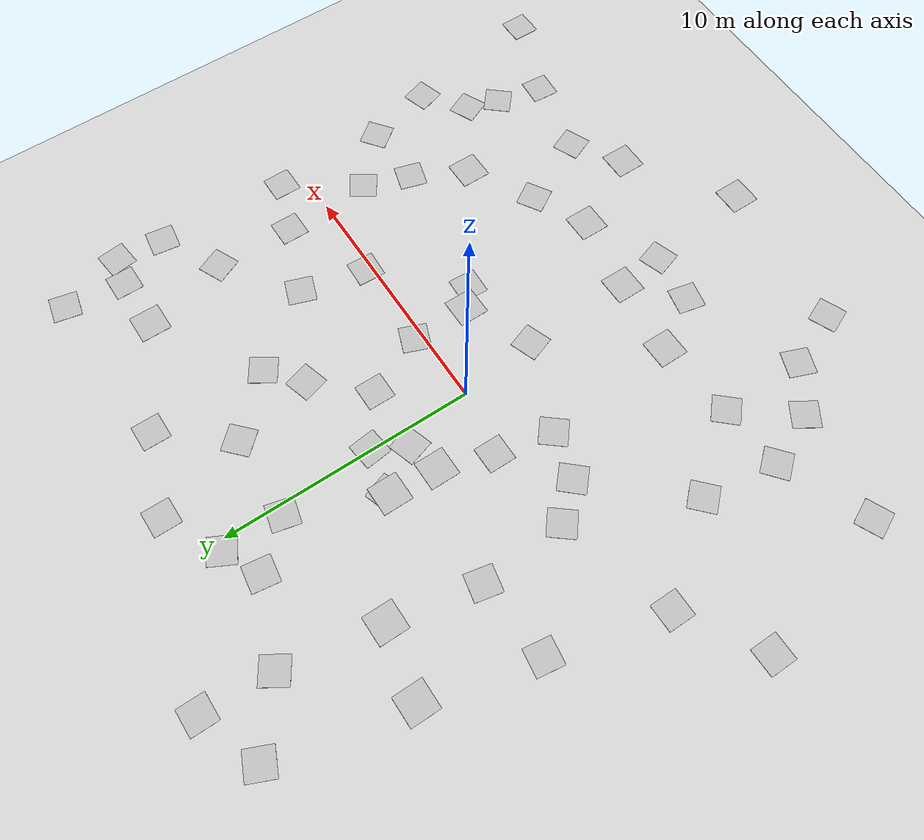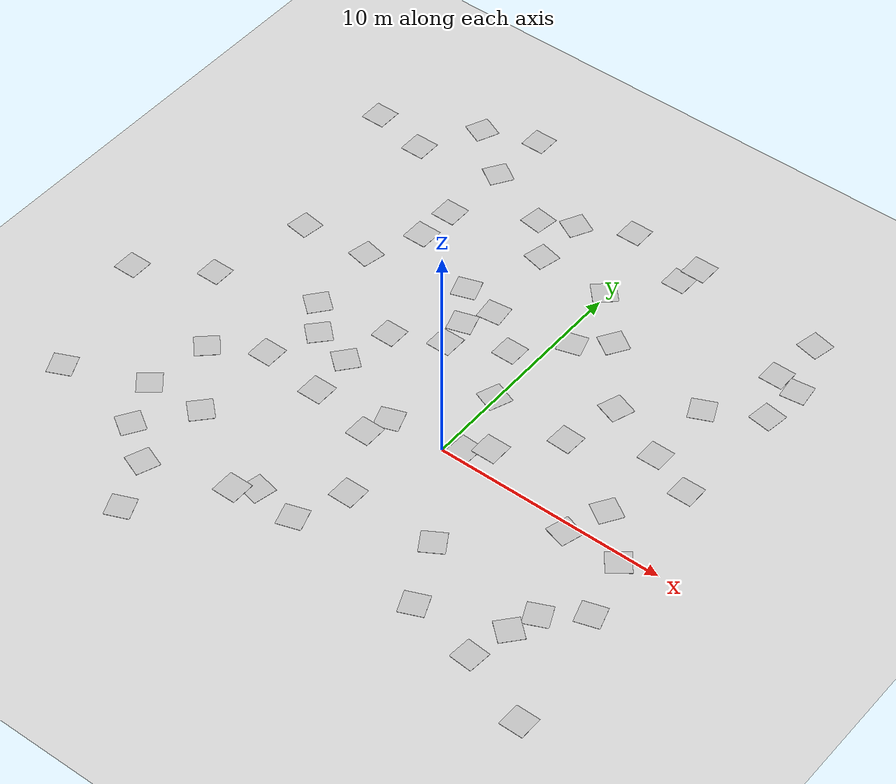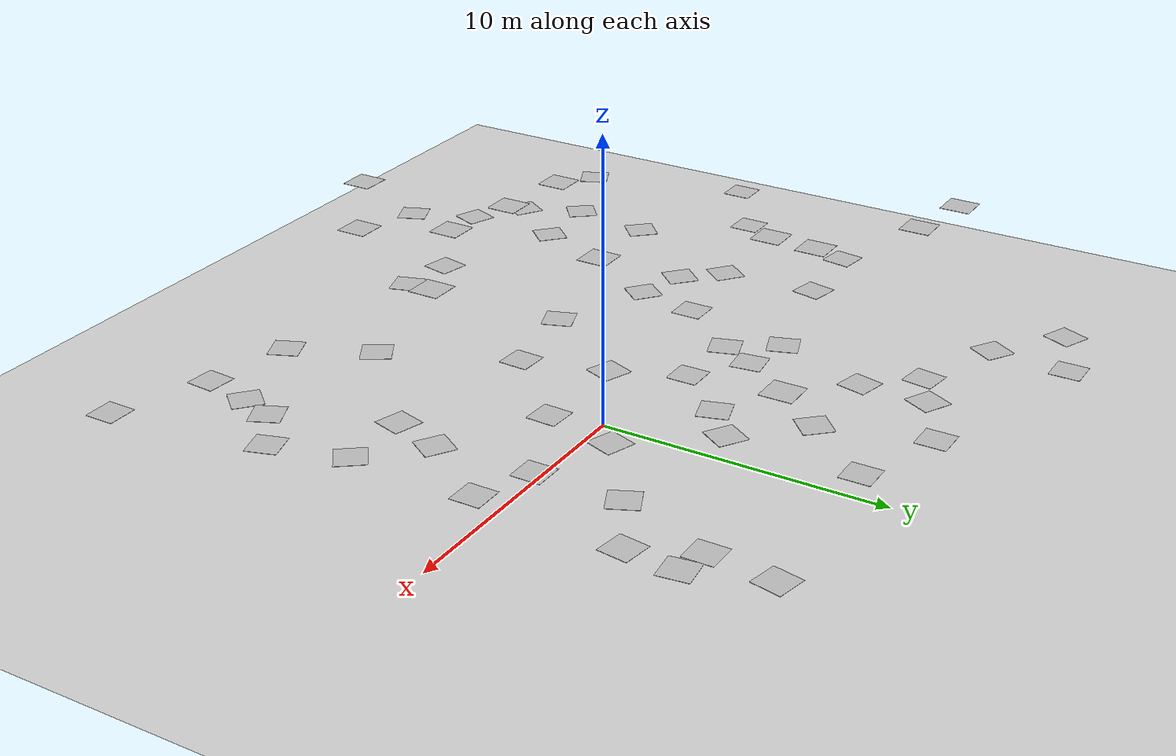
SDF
<sdf version="1.6">
 <world name="default">
  <light name="sun" type="directional">
   <pose>0 0 10 0 -0 0</pose>
   <diffuse>0.8 0.8 0.8 1</diffuse>
   <specular>0.2 0.2 0.2 1</specular>
   <attenuation>
    <range>1000</range>
    <constant>0.9</constant>
    <linear>0.01</linear>
    <quadratic>0.001</quadratic>
   </attenuation>
   <direction>-0.5 0.1 -0.9</direction>
  </light>
  <model name="ground_plane">
   <static>1</static>
   <link name="link">
    <collision name="collision">
     <geometry><plane><normal>0 0 1</normal><size>100 100</size></plane></geometry>
     <surface><friction><ode><mu>100</mu><mu2>50</mu2></ode></friction></surface>
    </collision>
    <visual name="visual">
     <cast_shadows>0</cast_shadows>
     <geometry><plane><normal>0 0 1</normal><size>100 100</size></plane></geometry>
     <material>
      <script><uri>file://media/materials/scripts/gazebo.material</uri><name>Gazebo/Grey</name></script>
     </material>
    </visual>
    <velocity_decay><linear>0</linear><angular>0</angular></velocity_decay>
   </link>
  </model>
  <physics name="default_physics" default="0" type="ode">
   <max_step_size>0.001</max_step_size>
   <real_time_factor>1</real_time_factor>
   <real_time_update_rate>1000</real_time_update_rate>
  </physics>
  <scene><ambient>0.4 0.4 0.4 1</ambient><background>0.7 0.7 0.7 1</background><shadows>1</shadows></scene>
  <spherical_coordinates>
   <surface_model>EARTH_WGS84</surface_model>
   <latitude_deg>0</latitude_deg>
   <longitude_deg>0</longitude_deg>
   <elevation>0</elevation>
   <heading_deg>0</heading_deg>
  </spherical_coordinates>
  <gravity>0 0 -9.8</gravity>
  <magnetic_field>6e-06 2.3e-05 -4.2e-05</magnetic_field>
  <atmosphere type="adiabatic"/>
  <audio><device>default</device></audio>
  <model name="Apriltag36_11_00000">
   <link name="main">
    <pose>0 0 3 0 -0 0</pose>
    <visual name="main_Visual">
     <geometry><box><size>1 1 0.01</size></box></geometry>
     <material>
      <script>
       <uri>model://Apriltag36_11_00000/materials/scripts</uri>
       <uri>model://Apriltag36_11_00000/materials/textures</uri>
       <name>Apriltag36_11_00000</name>
      </script>
     </material>
    </visual>
   </link>
   <static>1</static>
   <pose>0.180831 -0.047998 3 0 -0 0</pose>
  </model>
  <model name="Apriltag36_11_00000_0">
   <link name="main">
    <pose>0 0 3 0 -0 0</pose>
    <visual name="main_Visual">
     <geometry><box><size>1 1 0.01</size></box></geometry>
     <material>
      <script>
       <uri>model://Apriltag36_11_00000/materials/scripts</uri>
       <uri>model://Apriltag36_11_00000/materials/textures</uri>
       <name>Apriltag36_11_00000</name>
      </script>
     </material>
    </visual>
   </link>
   <static>1</static>
   <pose>-8.09842 -8.19597 -0 0 -0 1</pose>
  </model>
  <model name="Apriltag36_11_00000_1">
   <link name="main">
    <pose>0 0 3 0 -0 0</pose>
    <visual name="main_Visual">
     <geometry><box><size>1 1 0.01</size></box></geometry>
     <material>
      <script>
       <uri>model://Apriltag36_11_00000/materials/scripts</uri>
       <uri>model://Apriltag36_11_00000/materials/textures</uri>
       <name>Apriltag36_11_00000</name>
      </script>
     </material>
    </visual>
   </link>
   <static>1</static>
   <pose>9.06764 -6.12043 0 0 -0 2</pose>
  </model>
  <model name="Apriltag36_11_00000_2">
   <link name="main">
    <pose>0 0 3 0 -0 0</pose>
    <visual name="main_Visual">
     <geometry><box><size>1 1 0.01</size></box></geometry>
     <material>
      <script>
       <uri>model://Apriltag36_11_00000/materials/scripts</uri>
       <uri>model://Apriltag36_11_00000/materials/textures</uri>
       <name>Apriltag36_11_00000</name>
      </script>
     </material>
    </visual>
   </link>
   <static>1</static>
   <pose>-2.86208 9.67313 0 0 -0 3</pose>
  </model>
  <model name="Apriltag36_11_00001">
   <link name="main">
    <pose>0 0 3 0 -0 0</pose>
    <visual name="main_Visual">
     <geometry><box><size>1 1 0.01</size></box></geometry>
     <material>
      <script>
       <uri>model://Apriltag36_11_00001/materials/scripts</uri>
       <uri>model://Apriltag36_11_00001/materials/textures</uri>
       <name>Apriltag36_11_00001</name>
      </script>
     </material>
    </visual>
   </link>
   <static>1</static>
   <pose>1.57263 1.12402 -0 0 -0 1.2</pose>
  </model>
  <model name="Apriltag36_11_00001_0">
   <link name="main">
    <pose>0 0 3 0 -0 0</pose>
    <visual name="main_Visual">
     <geometry><box><size>1 1 0.01</size></box></geometry>
     <material>
      <script>
       <uri>model://Apriltag36_11_00001/materials/scripts</uri>
       <uri>model://Apriltag36_11_00001/materials/textures</uri>
       <name>Apriltag36_11_00001</name>
      </script>
     </material>
    </visual>
   </link>
   <static>1</static>
   <pose>-6.49386 -9.31739 -0 0 -0 1.2</pose>
  </model>
  <model name="Apriltag36_11_00001_1">
   <link name="main">
    <pose>0 0 3 0 -0 0</pose>
    <visual name="main_Visual">
     <geometry><box><size>1 1 0.01</size></box></geometry>
     <material>
      <script>
       <uri>model://Apriltag36_11_00001/materials/scripts</uri>
       <uri>model://Apriltag36_11_00001/materials/textures</uri>
       <name>Apriltag36_11_00001</name>
      </script>
     </material>
    </visual>
   </link>
   <static>1</static>
   <pose>10.5059 -4.97033 -0 0 -0 0.3</pose>
  </model>
  <model name="Apriltag36_11_00002">
   <link name="main">
    <pose>0 0 3 0 -0 0</pose>
    <visual name="main_Visual">
     <geometry><box><size>1 1 0.01</size></box></geometry>
     <material>
      <script>
       <uri>model://Apriltag36_11_00002/materials/scripts</uri>
       <uri>model://Apriltag36_11_00002/materials/textures</uri>
       <name>Apriltag36_11_00002</name>
      </script>
     </material>
    </visual>
   </link>
   <static>1</static>
   <pose>2.3097 -1.5964 -0 0 -0 3.1</pose>
  </model>
  <model name="Apriltag36_11_00002_0">
   <link name="main">
    <pose>0 0 3 0 -0 0</pose>
    <visual name="main_Visual">
     <geometry><box><size>1 1 0.01</size></box></geometry>
     <material>
      <script>
       <uri>model://Apriltag36_11_00002/materials/scripts</uri>
       <uri>model://Apriltag36_11_00002/materials/textures</uri>
       <name>Apriltag36_11_00002</name>
      </script>
     </material>
    </visual>
   </link>
   <static>1</static>
   <pose>-8.9276 -6.2431 0 0 -0 -0.883185</pose>
  </model>
  <model name="Apriltag36_11_00002_1">
   <link name="main">
    <pose>0 0 3 0 -0 0</pose>
    <visual name="main_Visual">
     <geometry><box><size>1 1 0.01</size></box></geometry>
     <material>
      <script>
       <uri>model://Apriltag36_11_00002/materials/scripts</uri>
       <uri>model://Apriltag36_11_00002/materials/textures</uri>
       <name>Apriltag36_11_00002</name>
      </script>
     </material>
    </visual>
   </link>
   <static>1</static>
   <pose>7.51542 -2.48902 0 0 -0 -0.283185</pose>
  </model>
  <model name="Apriltag36_11_00002_2">
   <link name="main">
    <pose>0 0 3 0 -0 0</pose>
    <visual name="main_Visual">
     <geometry><box><size>1 1 0.01</size></box></geometry>
     <material>
      <script>
       <uri>model://Apriltag36_11_00002/materials/scripts</uri>
       <uri>model://Apriltag36_11_00002/materials/textures</uri>
       <name>Apriltag36_11_00002</name>
      </script>
     </material>
    </visual>
   </link>
   <static>1</static>
   <pose>8.6906 -7.27277 0 0 -0 -2.28319</pose>
  </model>
  <model name="Apriltag36_11_00002_3">
   <link name="main">
    <pose>0 0 3 0 -0 0</pose>
    <visual name="main_Visual">
     <geometry><box><size>1 1 0.01</size></box></geometry>
     <material>
      <script>
       <uri>model://Apriltag36_11_00002/materials/scripts</uri>
       <uri>model://Apriltag36_11_00002/materials/textures</uri>
       <name>Apriltag36_11_00002</name>
      </script>
     </material>
    </visual>
   </link>
   <static>1</static>
   <pose>-1.51982 10.3352 0 0 -0 -2.05319</pose>
  </model>
  <model name="Apriltag36_11_00002_4">
   <link name="main">
    <pose>0 0 3 0 -0 0</pose>
    <visual name="main_Visual">
     <geometry><box><size>1 1 0.01</size></box></geometry>
     <material>
      <script>
       <uri>model://Apriltag36_11_00002/materials/scripts</uri>
       <uri>model://Apriltag36_11_00002/materials/textures</uri>
       <name>Apriltag36_11_00002</name>
      </script>
     </material>
    </visual>
   </link>
   <static>1</static>
   <pose>-1.53131 8.13085 0 0 -0 1.34</pose>
  </model>
  <model name="Apriltag36_11_00003_0">
   <link name="main">
    <pose>0 0 3 0 -0 0</pose>
    <visual name="main_Visual">
     <geometry><box><size>1 1 0.01</size></box></geometry>
     <material>
      <script>
       <uri>model://Apriltag36_11_00003/materials/scripts</uri>
       <uri>model://Apriltag36_11_00003/materials/textures</uri>
       <name>Apriltag36_11_00003</name>
      </script>
     </material>
    </visual>
   </link>
   <static>1</static>
   <pose>5.4295 3.4548 0 0 -0 1.23</pose>
  </model>
  <model name="Apriltag36_11_00003">
   <link name="main">
    <pose>0 0 3 0 -0 0</pose>
    <visual name="main_Visual">
     <geometry><box><size>1 1 0.01</size></box></geometry>
     <material>
      <script>
       <uri>model://Apriltag36_11_00003/materials/scripts</uri>
       <uri>model://Apriltag36_11_00003/materials/textures</uri>
       <name>Apriltag36_11_00003</name>
      </script>
     </material>
    </visual>
   </link>
   <static>1</static>
   <pose>-0.483767 -7.96809 0 0 -0 -2.82668</pose>
  </model>
  <model name="Apriltag36_11_00009">
   <link name="main">
    <pose>0 0 3 0 -0 0</pose>
    <visual name="main_Visual">
     <geometry><box><size>1 1 0.01</size></box></geometry>
     <material>
      <script>
       <uri>model://Apriltag36_11_00009/materials/scripts</uri>
       <uri>model://Apriltag36_11_00009/materials/textures</uri>
       <name>Apriltag36_11_00009</name>
      </script>
     </material>
    </visual>
   </link>
   <static>1</static>
   <pose>-2.35818 -7.74476 0 0 -0 -1.78319</pose>
  </model>
  <model name="Apriltag36_11_00010">
   <link name="main">
    <pose>0 0 3 0 -0 0</pose>
    <visual name="main_Visual">
     <geometry><box><size>1 1 0.01</size></box></geometry>
     <material>
      <script>
       <uri>model://Apriltag36_11_00010/materials/scripts</uri>
       <uri>model://Apriltag36_11_00010/materials/textures</uri>
       <name>Apriltag36_11_00010</name>
      </script>
     </material>
    </visual>
   </link>
   <static>1</static>
   <pose>2.05754 -7.84201 3 0 -0 0</pose>
  </model>
  <model name="Apriltag36_11_00013">
   <link name="main">
    <pose>0 0 3 0 -0 0</pose>
    <visual name="main_Visual">
     <geometry><box><size>1 1 0.01</size></box></geometry>
     <material>
      <script>
       <uri>model://Apriltag36_11_00013/materials/scripts</uri>
       <uri>model://Apriltag36_11_00013/materials/textures</uri>
       <name>Apriltag36_11_00013</name>
      </script>
     </material>
    </visual>
   </link>
   <static>1</static>
   <pose>0.675308 -5.24726 3 0 -0 0</pose>
  </model>
  <model name="Apriltag36_11_00008">
   <link name="main">
    <pose>0 0 3 0 -0 0</pose>
    <visual name="main_Visual">
     <geometry><box><size>1 1 0.01</size></box></geometry>
     <material>
      <script>
       <uri>model://Apriltag36_11_00008/materials/scripts</uri>
       <uri>model://Apriltag36_11_00008/materials/textures</uri>
       <name>Apriltag36_11_00008</name>
      </script>
     </material>
    </visual>
   </link>
   <static>1</static>
   <pose>-4.54053 -4.45472 3 0 -0 0</pose>
  </model>
  <model name="Apriltag36_11_00008_0">
   <link name="main">
    <pose>0 0 3 0 -0 0</pose>
    <visual name="main_Visual">
     <geometry><box><size>1 1 0.01</size></box></geometry>
     <material>
      <script>
       <uri>model://Apriltag36_11_00008/materials/scripts</uri>
       <uri>model://Apriltag36_11_00008/materials/textures</uri>
       <name>Apriltag36_11_00008</name>
      </script>
     </material>
    </visual>
   </link>
   <static>1</static>
   <pose>-1.9322 -4.76803 3 0 -0 0</pose>
  </model>
  <model name="Apriltag36_11_00008_1">
   <link name="main">
    <pose>0 0 3 0 -0 0</pose>
    <visual name="main_Visual">
     <geometry><box><size>1 1 0.01</size></box></geometry>
     <material>
      <script>
       <uri>model://Apriltag36_11_00008/materials/scripts</uri>
       <uri>model://Apriltag36_11_00008/materials/textures</uri>
       <name>Apriltag36_11_00008</name>
      </script>
     </material>
    </visual>
   </link>
   <static>1</static>
   <pose>-3.89876 5.40482 3 0 -0 0</pose>
  </model>
  <model name="Apriltag36_11_00008_2">
   <link name="main">
    <pose>0 0 3 0 -0 0</pose>
    <visual name="main_Visual">
     <geometry><box><size>1 1 0.01</size></box></geometry>
     <material>
      <script>
       <uri>model://Apriltag36_11_00008/materials/scripts</uri>
       <uri>model://Apriltag36_11_00008/materials/textures</uri>
       <name>Apriltag36_11_00008</name>
      </script>
     </material>
    </visual>
   </link>
   <static>1</static>
   <pose>4.16599 -5.79359 0 0 -0 2.12</pose>
  </model>
  <model name="Apriltag36_11_00008_3">
   <link name="main">
    <pose>0 0 3 0 -0 0</pose>
    <visual name="main_Visual">
     <geometry><box><size>1 1 0.01</size></box></geometry>
     <material>
      <script>
       <uri>model://Apriltag36_11_00008/materials/scripts</uri>
       <uri>model://Apriltag36_11_00008/materials/textures</uri>
       <name>Apriltag36_11_00008</name>
      </script>
     </material>
    </visual>
   </link>
   <static>1</static>
   <pose>10.1982 8.2991 0 0 -0 0.123123</pose>
  </model>
  <model name="Apriltag36_11_00010_0">
   <link name="main">
    <pose>0 0 3 0 -0 0</pose>
    <visual name="main_Visual">
     <geometry><box><size>1 1 0.01</size></box></geometry>
     <material>
      <script>
       <uri>model://Apriltag36_11_00010/materials/scripts</uri>
       <uri>model://Apriltag36_11_00010/materials/textures</uri>
       <name>Apriltag36_11_00010</name>
      </script>
     </material>
    </visual>
   </link>
   <static>1</static>
   <pose>9.15633 8.52005 0 0 -0 3.1414</pose>
  </model>
  <model name="Apriltag36_11_00011">
   <link name="main">
    <pose>0 0 3 0 -0 0</pose>
    <visual name="main_Visual">
     <geometry><box><size>1 1 0.01</size></box></geometry>
     <material>
      <script>
       <uri>model://Apriltag36_11_00011/materials/scripts</uri>
       <uri>model://Apriltag36_11_00011/materials/textures</uri>
       <name>Apriltag36_11_00011</name>
      </script>
     </material>
    </visual>
   </link>
   <static>1</static>
   <pose>-3.99369 3.80435 3 0 -0 0</pose>
  </model>
  <model name="Apriltag36_11_00010_1">
   <link name="main">
    <pose>0 0 3 0 -0 0</pose>
    <visual name="main_Visual">
     <geometry><box><size>1 1 0.01</size></box></geometry>
     <material>
      <script>
       <uri>model://Apriltag36_11_00010/materials/scripts</uri>
       <uri>model://Apriltag36_11_00010/materials/textures</uri>
       <name>Apriltag36_11_00010</name>
      </script>
     </material>
    </visual>
   </link>
   <static>1</static>
   <pose>-2.74596 4.97416 0 0 -0 0.334</pose>
  </model>
  <model name="Apriltag36_11_00012">
   <link name="main">
    <pose>0 0 3 0 -0 0</pose>
    <visual name="main_Visual">
     <geometry><box><size>1 1 0.01</size></box></geometry>
     <material>
      <script>
       <uri>model://Apriltag36_11_00012/materials/scripts</uri>
       <uri>model://Apriltag36_11_00012/materials/textures</uri>
       <name>Apriltag36_11_00012</name>
      </script>
     </material>
    </visual>
   </link>
   <static>1</static>
   <pose>-7.10763 7.55783 3 0 -0 0</pose>
  </model>
  <model name="Apriltag36_11_00007">
   <link name="main">
    <pose>0 0 3 0 -0 0</pose>
    <visual name="main_Visual">
     <geometry><box><size>1 1 0.01</size></box></geometry>
     <material>
      <script>
       <uri>model://Apriltag36_11_00007/materials/scripts</uri>
       <uri>model://Apriltag36_11_00007/materials/textures</uri>
       <name>Apriltag36_11_00007</name>
      </script>
     </material>
    </visual>
   </link>
   <static>1</static>
   <pose>9.40469 10.6878 0 0 -0 -1.78319</pose>
  </model>
  <model name="Apriltag36_11_00009_0">
   <link name="main">
    <pose>0 0 3 0 -0 0</pose>
    <visual name="main_Visual">
     <geometry><box><size>1 1 0.01</size></box></geometry>
     <material>
      <script>
       <uri>model://Apriltag36_11_00009/materials/scripts</uri>
       <uri>model://Apriltag36_11_00009/materials/textures</uri>
       <name>Apriltag36_11_00009</name>
      </script>
     </material>
    </visual>
   </link>
   <static>1</static>
   <pose>4.91356 1.06503 -0 0 -0 3.1</pose>
  </model>
  <model name="Apriltag36_11_00009_1">
   <link name="main">
    <pose>0 0 3 0 -0 0</pose>
    <visual name="main_Visual">
     <geometry><box><size>1 1 0.01</size></box></geometry>
     <material>
      <script>
       <uri>model://Apriltag36_11_00009/materials/scripts</uri>
       <uri>model://Apriltag36_11_00009/materials/textures</uri>
       <name>Apriltag36_11_00009</name>
      </script>
     </material>
    </visual>
   </link>
   <static>1</static>
   <pose>7.93627 2.46693 0 0 -0 3.1414</pose>
  </model>
  <model name="Apriltag36_11_00006">
   <link name="main">
    <pose>0 0 3 0 -0 0</pose>
    <visual name="main_Visual">
     <geometry><box><size>1 1 0.01</size></box></geometry>
     <material>
      <script>
       <uri>model://Apriltag36_11_00006/materials/scripts</uri>
       <uri>model://Apriltag36_11_00006/materials/textures</uri>
       <name>Apriltag36_11_00006</name>
      </script>
     </material>
    </visual>
   </link>
   <static>1</static>
   <pose>2.17535 5.11716 0 0 -0 -1.28319</pose>
  </model>
  <model name="Apriltag36_11_00003_1">
   <link name="main">
    <pose>0 0 3 0 -0 0</pose>
    <visual name="main_Visual">
     <geometry><box><size>1 1 0.01</size></box></geometry>
     <material>
      <script>
       <uri>model://Apriltag36_11_00003/materials/scripts</uri>
       <uri>model://Apriltag36_11_00003/materials/textures</uri>
       <name>Apriltag36_11_00003</name>
      </script>
     </material>
    </visual>
   </link>
   <static>1</static>
   <pose>-3.96538 -0.809464 0 0 -0 2.45</pose>
  </model>
  <model name="Apriltag36_11_00005">
   <link name="main">
    <pose>0 0 3 0 -0 0</pose>
    <visual name="main_Visual">
     <geometry><box><size>1 1 0.01</size></box></geometry>
     <material>
      <script>
       <uri>model://Apriltag36_11_00005/materials/scripts</uri>
       <uri>model://Apriltag36_11_00005/materials/textures</uri>
       <name>Apriltag36_11_00005</name>
      </script>
     </material>
    </visual>
   </link>
   <static>1</static>
   <pose>-6.71494 0.848978 -0 0 -0 -0.683185</pose>
  </model>
  <model name="Apriltag36_11_00004">
   <link name="main">
    <pose>0 0 3 0 -0 0</pose>
    <visual name="main_Visual">
     <geometry><box><size>1 1 0.01</size></box></geometry>
     <material>
      <script>
       <uri>model://Apriltag36_11_00004/materials/scripts</uri>
       <uri>model://Apriltag36_11_00004/materials/textures</uri>
       <name>Apriltag36_11_00004</name>
      </script>
     </material>
    </visual>
   </link>
   <static>1</static>
   <pose>-1.73816 3.42876 0 0 -0 -2.83318</pose>
  </model>
  <model name="Apriltag36_11_00002_5">
   <link name="main">
    <pose>0 0 3 0 -0 0</pose>
    <visual name="main_Visual">
     <geometry><box><size>1 1 0.01</size></box></geometry>
     <material>
      <script>
       <uri>model://Apriltag36_11_00002/materials/scripts</uri>
       <uri>model://Apriltag36_11_00002/materials/textures</uri>
       <name>Apriltag36_11_00002</name>
      </script>
     </material>
    </visual>
   </link>
   <static>1</static>
   <pose>-5.6684 -0.345135 0 0 -0 2.4</pose>
  </model>
  <model name="Apriltag36_11_00008_4">
   <link name="main">
    <pose>0 0 3 0 -0 0</pose>
    <visual name="main_Visual">
     <geometry><box><size>1 1 0.01</size></box></geometry>
     <material>
      <script>
       <uri>model://Apriltag36_11_00008/materials/scripts</uri>
       <uri>model://Apriltag36_11_00008/materials/textures</uri>
       <name>Apriltag36_11_00008</name>
      </script>
     </material>
    </visual>
   </link>
   <static>1</static>
   <pose>5.3929 -8.39874 0 0 -0 0.4</pose>
  </model>
  <model name="Apriltag36_11_00014">
   <link name="main">
    <pose>0 0 3 0 -0 0</pose>
    <visual name="main_Visual">
     <geometry><box><size>1 1 0.01</size></box></geometry>
     <material>
      <script>
       <uri>model://Apriltag36_11_00014/materials/scripts</uri>
       <uri>model://Apriltag36_11_00014/materials/textures</uri>
       <name>Apriltag36_11_00014</name>
      </script>
     </material>
    </visual>
   </link>
   <static>1</static>
   <pose>8.29346 -8.98144 0 0 -0 -1.64918</pose>
  </model>
  <model name="Apriltag36_11_00015">
   <link name="main">
    <pose>0 0 3 0 -0 0</pose>
    <visual name="main_Visual">
     <geometry><box><size>1 1 0.01</size></box></geometry>
     <material>
      <script>
       <uri>model://Apriltag36_11_00015/materials/scripts</uri>
       <uri>model://Apriltag36_11_00015/materials/textures</uri>
       <name>Apriltag36_11_00015</name>
      </script>
     </material>
    </visual>
   </link>
   <static>1</static>
   <pose>5.26753 8.71176 3 0 -0 0</pose>
  </model>
  <model name="Apriltag36_11_00013_0">
   <link name="main">
    <pose>0 0 3 0 -0 0</pose>
    <visual name="main_Visual">
     <geometry><box><size>1 1 0.01</size></box></geometry>
     <material>
      <script>
       <uri>model://Apriltag36_11_00013/materials/scripts</uri>
       <uri>model://Apriltag36_11_00013/materials/textures</uri>
       <name>Apriltag36_11_00013</name>
      </script>
     </material>
    </visual>
   </link>
   <static>1</static>
   <pose>-6.94484 4.05002 0 0 -0 2.93902</pose>
  </model>
  <model name="Apriltag36_11_00007_0">
   <link name="main">
    <pose>0 0 3 0 -0 0</pose>
    <visual name="main_Visual">
     <geometry><box><size>1 1 0.01</size></box></geometry>
     <material>
      <script>
       <uri>model://Apriltag36_11_00007/materials/scripts</uri>
       <uri>model://Apriltag36_11_00007/materials/textures</uri>
       <name>Apriltag36_11_00007</name>
      </script>
     </material>
    </visual>
   </link>
   <static>1</static>
   <pose>-8.51346 -3.49131 0 0 -0 -2.39318</pose>
  </model>
  <model name="Apriltag36_11_00006_0">
   <link name="main">
    <pose>0 0 3 0 -0 0</pose>
    <visual name="main_Visual">
     <geometry><box><size>1 1 0.01</size></box></geometry>
     <material>
      <script>
       <uri>model://Apriltag36_11_00006/materials/scripts</uri>
       <uri>model://Apriltag36_11_00006/materials/textures</uri>
       <name>Apriltag36_11_00006</name>
      </script>
     </material>
    </visual>
   </link>
   <static>1</static>
   <pose>4.67455 -3.16742 3 0 -0 0</pose>
  </model>
  <model name="Apriltag36_11_00006_1">
   <link name="main">
    <pose>0 0 3 0 -0 0</pose>
    <visual name="main_Visual">
     <geometry><box><size>1 1 0.01</size></box></geometry>
     <material>
      <script>
       <uri>model://Apriltag36_11_00006/materials/scripts</uri>
       <uri>model://Apriltag36_11_00006/materials/textures</uri>
       <name>Apriltag36_11_00006</name>
      </script>
     </material>
    </visual>
   </link>
   <static>1</static>
   <pose>-9.44059 8.02715 3 0 -0 0</pose>
  </model>
  <model name="Apriltag36_11_00004_0">
   <link name="main">
    <pose>0 0 3 0 -0 0</pose>
    <visual name="main_Visual">
     <geometry><box><size>1 1 0.01</size></box></geometry>
     <material>
      <script>
       <uri>model://Apriltag36_11_00004/materials/scripts</uri>
       <uri>model://Apriltag36_11_00004/materials/textures</uri>
       <name>Apriltag36_11_00004</name>
      </script>
     </material>
    </visual>
   </link>
   <static>1</static>
   <pose>-9.84041 3.80946 0 0 -0 3</pose>
  </model>
  <model name="Apriltag36_11_00007_1">
   <link name="main">
    <pose>0 0 3 0 -0 0</pose>
    <visual name="main_Visual">
     <geometry><box><size>1 1 0.01</size></box></geometry>
     <material>
      <script>
       <uri>model://Apriltag36_11_00007/materials/scripts</uri>
       <uri>model://Apriltag36_11_00007/materials/textures</uri>
       <name>Apriltag36_11_00007</name>
      </script>
     </material>
    </visual>
   </link>
   <static>1</static>
   <pose>1.5258 8.04517 0 0 -0 -2.39318</pose>
  </model>
  <model name="Apriltag36_11_00008_6">
   <link name="main">
    <pose>0 0 3 0 -0 0</pose>
    <visual name="main_Visual">
     <geometry><box><size>1 1 0.01</size></box></geometry>
     <material>
      <script>
       <uri>model://Apriltag36_11_00008/materials/scripts</uri>
       <uri>model://Apriltag36_11_00008/materials/textures</uri>
       <name>Apriltag36_11_00008</name>
      </script>
     </material>
    </visual>
   </link>
   <static>1</static>
   <pose>7.96307 5.36834 0 0 -0 2</pose>
  </model>
  <model name="Apriltag36_11_00012_0">
   <link name="main">
    <pose>0 0 3 0 -0 0</pose>
    <visual name="main_Visual">
     <geometry><box><size>1 1 0.01</size></box></geometry>
     <material>
      <script>
       <uri>model://Apriltag36_11_00012/materials/scripts</uri>
       <uri>model://Apriltag36_11_00012/materials/textures</uri>
       <name>Apriltag36_11_00012</name>
      </script>
     </material>
    </visual>
   </link>
   <static>1</static>
   <pose>-7.81093 12.4673 0 0 -0 -1.98318</pose>
  </model>
  <model name="Apriltag36_11_00010_2">
   <link name="main">
    <pose>0 0 3 0 -0 0</pose>
    <visual name="main_Visual">
     <geometry><box><size>1 1 0.01</size></box></geometry>
     <material>
      <script>
       <uri>model://Apriltag36_11_00010/materials/scripts</uri>
       <uri>model://Apriltag36_11_00010/materials/textures</uri>
       <name>Apriltag36_11_00010</name>
      </script>
     </material>
    </visual>
   </link>
   <static>1</static>
   <pose>-5.71442 10.7929 -0 0 -0 1</pose>
  </model>
  <model name="Apriltag36_11_00006_2">
   <link name="main">
    <pose>0 0 3 0 -0 0</pose>
    <visual name="main_Visual">
     <geometry><box><size>1 1 0.01</size></box></geometry>
     <material>
      <script>
       <uri>model://Apriltag36_11_00006/materials/scripts</uri>
       <uri>model://Apriltag36_11_00006/materials/textures</uri>
       <name>Apriltag36_11_00006</name>
      </script>
     </material>
    </visual>
   </link>
   <static>1</static>
   <pose>-12.0879 -7.57044 0 0 -0 2</pose>
  </model>
  <model name="Apriltag36_11_00006_3">
   <link name="main">
    <pose>0 0 3 0 -0 0</pose>
    <visual name="main_Visual">
     <geometry><box><size>1 1 0.01</size></box></geometry>
     <material>
      <script>
       <uri>model://Apriltag36_11_00006/materials/scripts</uri>
       <uri>model://Apriltag36_11_00006/materials/textures</uri>
       <name>Apriltag36_11_00006</name>
      </script>
     </material>
    </visual>
   </link>
   <static>1</static>
   <pose>-1.24918 -10.154 3 0 -0 0</pose>
  </model>
  <model name="Apriltag36_11_00005_0">
   <link name="main">
    <pose>0 0 3 0 -0 0</pose>
    <visual name="main_Visual">
     <geometry><box><size>1 1 0.01</size></box></geometry>
     <material>
      <script>
       <uri>model://Apriltag36_11_00005/materials/scripts</uri>
       <uri>model://Apriltag36_11_00005/materials/textures</uri>
       <name>Apriltag36_11_00005</name>
      </script>
     </material>
    </visual>
   </link>
   <static>1</static>
   <pose>-0.777539 -2.13542 0 0 -0 -2.79795</pose>
  </model>
  <model name="Apriltag36_11_00004_1">
   <link name="main">
    <visual name="main_Visual">
     <geometry><box><size>1 1 0.01</size></box></geometry>
     <material>
      <script>
       <uri>model://Apriltag36_11_00004/materials/scripts</uri>
       <uri>model://Apriltag36_11_00004/materials/textures</uri>
       <name>Apriltag36_11_00004</name>
      </script>
     </material>
    </visual>
   </link>
   <static>1</static>
   <pose>-6.51206 -6.10348 3 0 -0 2.4</pose>
  </model>
  <model name="Apriltag36_11_00005_1">
   <link name="main">
    <visual name="main_Visual">
     <geometry><box><size>1 1 0.01</size></box></geometry>
     <material>
      <script>
       <uri>model://Apriltag36_11_00005/materials/scripts</uri>
       <uri>model://Apriltag36_11_00005/materials/textures</uri>
       <name>Apriltag36_11_00005</name>
      </script>
     </material>
    </visual>
   </link>
   <static>1</static>
   <pose>8.11328 -0.786889 3 0 -0 1</pose>
  </model>
  <model name="Apriltag36_11_00011_0">
   <link name="main">
    <visual name="main_Visual">
     <geometry><box><size>1 1 0.01</size></box></geometry>
     <material>
      <script>
       <uri>model://Apriltag36_11_00011/materials/scripts</uri>
       <uri>model://Apriltag36_11_00011/materials/textures</uri>
       <name>Apriltag36_11_00011</name>
      </script>
     </material>
    </visual>
   </link>
   <static>1</static>
   <pose>9.82209 1.7221 3 0 -0 0</pose>
  </model>
  <model name="Apriltag36_11_00011_1">
   <link name="main">
    <visual name="main_Visual">
     <geometry><box><size>1 1 0.01</size></box></geometry>
     <material>
      <script>
       <uri>model://Apriltag36_11_00011/materials/scripts</uri>
       <uri>model://Apriltag36_11_00011/materials/textures</uri>
       <name>Apriltag36_11_00011</name>
      </script>
     </material>
    </visual>
   </link>
   <static>1</static>
   <pose>3.38128 6.1061 3 0 -0 1</pose>
  </model>
  <model name="Apriltag36_11_00013_1">
   <link name="main">
    <visual name="main_Visual">
     <geometry><box><size>1 1 0.01</size></box></geometry>
     <material>
      <script>
       <uri>model://Apriltag36_11_00013/materials/scripts</uri>
       <uri>model://Apriltag36_11_00013/materials/textures</uri>
       <name>Apriltag36_11_00013</name>
      </script>
     </material>
    </visual>
   </link>
   <static>1</static>
   <pose>-1.13068 4.60018 3 0 -0 0.1234</pose>
  </model>
  <model name="Apriltag36_11_00013_2">
   <link name="main">
    <visual name="main_Visual">
     <geometry><box><size>1 1 0.01</size></box></geometry>
     <material>
      <script>
       <uri>model://Apriltag36_11_00013/materials/scripts</uri>
       <uri>model://Apriltag36_11_00013/materials/textures</uri>
       <name>Apriltag36_11_00013</name>
      </script>
     </material>
    </visual>
   </link>
   <static>1</static>
   <pose>11.3501 -10.1721 3 0 -0 0</pose>
  </model>
  <model name="Apriltag36_11_00014_0">
   <link name="main">
    <visual name="main_Visual">
     <geometry><box><size>1 1 0.01</size></box></geometry>
     <material>
      <script>
       <uri>model://Apriltag36_11_00014/materials/scripts</uri>
       <uri>model://Apriltag36_11_00014/materials/textures</uri>
       <name>Apriltag36_11_00014</name>
      </script>
     </material>
    </visual>
   </link>
   <static>1</static>
   <pose>9.85728 -2.46548 3 0 -0 0.6523</pose>
  </model>
  <model name="Apriltag36_11_00014_1">
   <link name="main">
    <visual name="main_Visual">
     <geometry><box><size>1 1 0.01</size></box></geometry>
     <material>
      <script>
       <uri>model://Apriltag36_11_00014/materials/scripts</uri>
       <uri>model://Apriltag36_11_00014/materials/textures</uri>
       <name>Apriltag36_11_00014</name>
      </script>
     </material>
    </visual>
   </link>
   <static>1</static>
   <pose>-13.6185 -2.02459 3 0 -0 0</pose>
  </model>
  <model name="Apriltag36_11_00015_1">
   <link name="main">
    <visual name="main_Visual">
     <geometry><box><size>1 1 0.01</size></box></geometry>
     <material>
      <script>
       <uri>model://Apriltag36_11_00015/materials/scripts</uri>
       <uri>model://Apriltag36_11_00015/materials/textures</uri>
       <name>Apriltag36_11_00015</name>
      </script>
     </material>
    </visual>
   </link>
   <static>1</static>
   <pose>0.52216 11.4206 3 0 -0 0</pose>
  </model>
  <model name="Apriltag36_11_00015_2">
   <link name="main">
    <visual name="main_Visual">
     <geometry><box><size>1 1 0.01</size></box></geometry>
     <material>
      <script>
       <uri>model://Apriltag36_11_00015/materials/scripts</uri>
       <uri>model://Apriltag36_11_00015/materials/textures</uri>
       <name>Apriltag36_11_00015</name>
      </script>
     </material>
    </visual>
   </link>
   <static>1</static>
   <pose>-5.58505 13.3216 3 0 -0 0</pose>
  </model>
  <model name="Apriltag36_11_00001_2">
   <link name="main">
    <visual name="main_Visual">
     <geometry><box><size>1 1 0.01</size></box></geometry>
     <material>
      <script>
       <uri>model://Apriltag36_11_00001/materials/scripts</uri>
       <uri>model://Apriltag36_11_00001/materials/textures</uri>
       <name>Apriltag36_11_00001</name>
      </script>
     </material>
    </visual>
   </link>
   <static>1</static>
   <pose>-5.63523 -11.4199 3 0 -0 0.4</pose>
  </model>
  <model name="Apriltag36_11_00006_4">
   <link name="main">
    <visual name="main_Visual">
     <geometry><box><size>1 1 0.01</size></box></geometry>
     <material>
      <script>
       <uri>model://Apriltag36_11_00006/materials/scripts</uri>
       <uri>model://Apriltag36_11_00006/materials/textures</uri>
       <name>Apriltag36_11_00006</name>
      </script>
     </material>
    </visual>
   </link>
   <static>1</static>
   <pose>10.0496 6.5607 3 0 -0 3</pose>
  </model>
  <model name="Apriltag36_11_00015_0">
   <link name="main">
    <visual name="main_Visual">
     <geometry><box><size>1 1 0.01</size></box></geometry>
     <material>
      <script>
       <uri>model://Apriltag36_11_00015/materials/scripts</uri>
       <uri>model://Apriltag36_11_00015/materials/textures</uri>
       <name>Apriltag36_11_00015</name>
      </script>
     </material>
    </visual>
   </link>
   <static>1</static>
   <pose>3.40567 10.3483 3 0 -0 0</pose>
  </model>
  <model name="Apriltag36_11_00015_3">
   <link name="main">
    <visual name="main_Visual">
     <geometry><box><size>1 1 0.01</size></box></geometry>
     <material>
      <script>
       <uri>model://Apriltag36_11_00015/materials/scripts</uri>
       <uri>model://Apriltag36_11_00015/materials/textures</uri>
       <name>Apriltag36_11_00015</name>
      </script>
     </material>
    </visual>
   </link>
   <static>1</static>
   <pose>-10.8685 -0.329738 3 0 -0 0</pose>
  </model>
  <model name="Apriltag36_11_00009_2">
   <link name="main">
    <visual name="main_Visual">
     <geometry><box><size>1 1 0.01</size></box></geometry>
     <material>
      <script>
       <uri>model://Apriltag36_11_00009/materials/scripts</uri>
       <uri>model://Apriltag36_11_00009/materials/textures</uri>
       <name>Apriltag36_11_00009</name>
      </script>
     </material>
    </visual>
   </link>
   <static>1</static>
   <pose>-3.53994 1.27424 3 0 -0 0</pose>
  </model>
  <model name="Apriltag36_11_00014_2">
   <link name="main">
    <visual name="main_Visual">
     <geometry><box><size>1 1 0.01</size></box></geometry>
     <material>
      <script>
       <uri>model://Apriltag36_11_00014/materials/scripts</uri>
       <uri>model://Apriltag36_11_00014/materials/textures</uri>
       <name>Apriltag36_11_00014</name>
      </script>
     </material>
    </visual>
   </link>
   <static>1</static>
   <pose>0.580238 3.36071 3 0 -0 0</pose>
  </model>
 </world>
</sdf>
